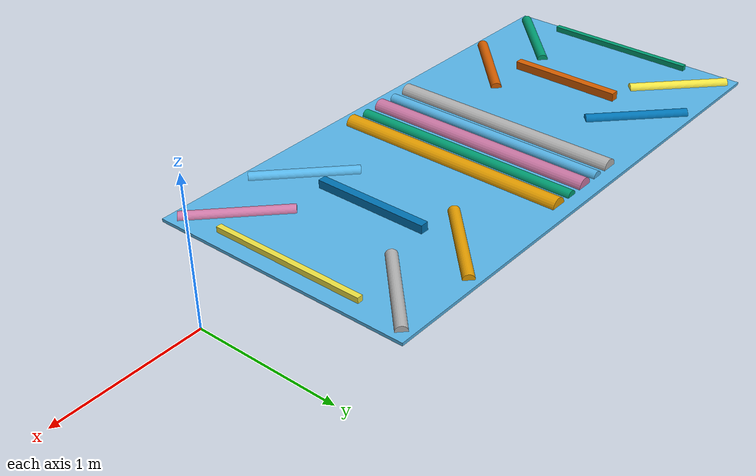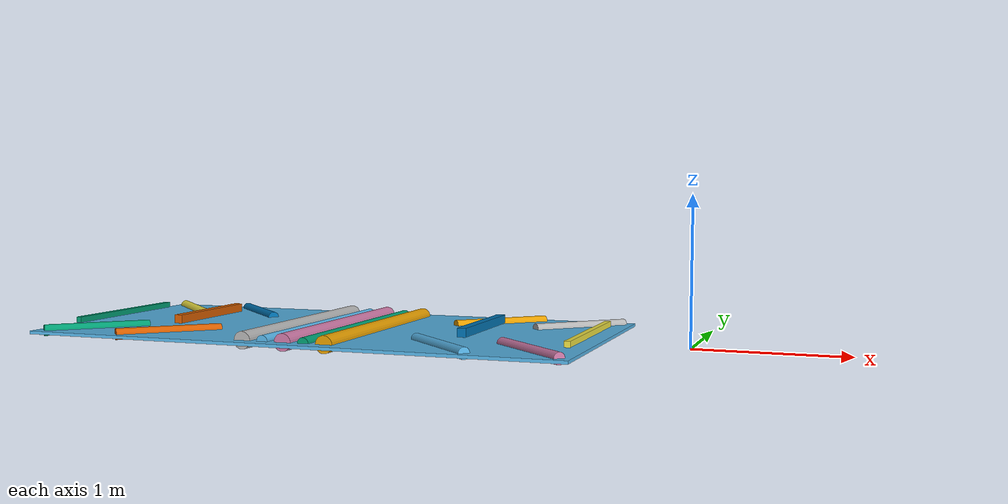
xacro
<?xml version="1.0"?>
<robot name="rough_terrrain" xmlns:xacro="http://www.ros.org/wiki/xacro">
    <gazebo>
        <static>true</static>
    </gazebo>

    <!-- Sizes from the rules of the cybathlon 2020 -->
    <xacro:property name="plate_height" default="0.022"/>
    <xacro:property name="plate_length" default="3.88"/>
    <xacro:property name="plate_width" default="1.95"/>

    <xacro:property name="long_block_width" default="0.04"/>
    <xacro:property name="long_block_length" default="1.15"/>
    <xacro:property name="short_block_width" default="0.06"/>
    <xacro:property name="short_block_length" default="0.85"/>

    <xacro:property name="side_rods_radius" default="0.04"/>
    <xacro:property name="side_rods_length" default="0.736"/>
    <xacro:property name="thick_rod_radius" default="0.06"/>
    <xacro:property name="thin_rod_radius" default="0.04"/>
    <xacro:property name="middle_rods_length" default="1.75"/>

    <xacro:property name="distance_to_origin" default="0.4"/>

    <xacro:property name="parent_name" value="world"/>
    <xacro:property name="mu1" value="1.0"/>
    <xacro:property name="mu2" value="1.0"/>
    <!-- Minimum allowable depth before contact correction impulse is applied. -->
    <xacro:property name="min_depth" value="0.0005"/>

    <!-- Used for fixing robot to Gazebo 'base_link' -->
    <link name="${parent_name}"/>

    <!-- Links -->

<!--                    ixx="1"-->
<!--                    ixy="1"-->
<!--                    ixz="1"-->
<!--                    iyy="1"-->
<!--                    iyz="1"-->

    <link name="bottom_plate">
        <collision>
            <geometry>
                <box size="${plate_length} ${plate_width} ${plate_height}" />
            </geometry>
        </collision>

        <visual name='visual'>
          <geometry>
            <box size="${plate_length} ${plate_width} ${plate_height}" />
          </geometry>
        </visual>
        <inertial>
            <origin xyz="0 0 0" rpy="0 0 0"/>
            <mass value="1"/>
            <inertia
                    ixx="1"
                    ixy="1"
                    ixz="1"
                    iyy="1"
                    iyz="1"
                    izz="1" />
        </inertial>
    </link>

    <link name="long_block_1">
        <collision>
          <origin xyz="0 0 0" rpy="0 0 0"/>
          <geometry>
            <box size="${long_block_length} ${long_block_width} ${long_block_width}" />
          </geometry>
        </collision>

        <visual name='visual'>
          <origin xyz="0 0 0" rpy="0 0 0"/>
          <geometry>
            <box size="${long_block_length} ${long_block_width} ${long_block_width}" />
          </geometry>
        </visual>
    </link>

    <link name="long_block_2">
        <collision>
            <origin xyz="0 0 0" rpy="0 0 0"/>
            <geometry>
                <box size="${long_block_length} ${long_block_width} ${long_block_width}" />
            </geometry>
        </collision>

        <visual name='visual'>
            <origin xyz="0 0 0" rpy="0 0 0"/>
            <geometry>
                <box size="${long_block_length} ${long_block_width} ${long_block_width}" />
            </geometry>
        </visual>
    </link>

    <link name="short_block_1">
        <collision>
          <origin xyz="0 0 0" rpy="0 0 0"/>
          <geometry>
            <box size="${short_block_length} ${short_block_width} ${short_block_width}" />
          </geometry>
        </collision>

        <visual name='visual'>
          <origin xyz="0 0 0" rpy="0 0 0"/>
          <geometry>
            <box size="${short_block_length} ${short_block_width} ${short_block_width}" />
          </geometry>
        </visual>
    </link>

    <link name="short_block_2">
        <collision>
            <origin xyz="0 0 0" rpy="0 0 0"/>
            <geometry>
                <box size="${short_block_length} ${short_block_width} ${short_block_width}" />
            </geometry>
        </collision>

        <visual name='visual'>
            <origin xyz="0 0 0" rpy="0 0 0"/>
            <geometry>
                <box size="${short_block_length} ${short_block_width} ${short_block_width}" />
            </geometry>
        </visual>
    </link>

    <link name="side_rod_1">
        <collision>
          <origin xyz="0 0 0" rpy="0 0 0"/>
          <geometry>
            <cylinder length="${side_rods_length}" radius="${side_rods_radius}" />
          </geometry>
        </collision>

        <visual name='visual'>
          <origin xyz="0 0 0" rpy="0 0 0"/>
          <geometry>
            <cylinder length="${side_rods_length}" radius="${side_rods_radius}" />
          </geometry>
        </visual>
    </link>

    <link name="side_rod_2">
        <collision>
            <origin xyz="0 0 0" rpy="0 0 0"/>
            <geometry>
                <cylinder length="${side_rods_length}" radius="${side_rods_radius}" />
            </geometry>
        </collision>

        <visual name='visual'>
            <origin xyz="0 0 0" rpy="0 0 0"/>
            <geometry>
                <cylinder length="${side_rods_length}" radius="${side_rods_radius}" />
            </geometry>
        </visual>
    </link>

    <link name="side_rod_3">
        <collision>
            <origin xyz="0 0 0" rpy="0 0 0"/>
            <geometry>
                <cylinder length="${side_rods_length}" radius="${side_rods_radius}" />
            </geometry>
        </collision>

        <visual name='visual'>
            <origin xyz="0 0 0" rpy="0 0 0"/>
            <geometry>
                <cylinder length="${side_rods_length}" radius="${side_rods_radius}" />
            </geometry>
        </visual>
    </link>

    <link name="side_rod_4">
        <collision>
            <origin xyz="0 0 0" rpy="0 0 0"/>
            <geometry>
                <cylinder length="${side_rods_length}" radius="${side_rods_radius}" />
            </geometry>
        </collision>

        <visual name='visual'>
            <origin xyz="0 0 0" rpy="0 0 0"/>
            <geometry>
                <cylinder length="${side_rods_length}" radius="${side_rods_radius}" />
            </geometry>
        </visual>
    </link>

    <link name="side_rod_5">
        <collision>
            <origin xyz="0 0 0" rpy="0 0 0"/>
            <geometry>
                <cylinder length="${side_rods_length}" radius="${side_rods_radius}" />
            </geometry>
        </collision>

        <visual name='visual'>
            <origin xyz="0 0 0" rpy="0 0 0"/>
            <geometry>
                <cylinder length="${side_rods_length}" radius="${side_rods_radius}" />
            </geometry>
        </visual>
    </link>

    <link name="side_rod_6">
        <collision>
            <origin xyz="0 0 0" rpy="0 0 0"/>
            <geometry>
                <cylinder length="${side_rods_length}" radius="${side_rods_radius}" />
            </geometry>
        </collision>

        <visual name='visual'>
            <origin xyz="0 0 0" rpy="0 0 0"/>
            <geometry>
                <cylinder length="${side_rods_length}" radius="${side_rods_radius}" />
            </geometry>
        </visual>
    </link>

    <link name="side_rod_7">
        <collision>
            <origin xyz="0 0 0" rpy="0 0 0"/>
            <geometry>
                <cylinder length="${side_rods_length}" radius="${side_rods_radius}" />
            </geometry>
        </collision>

        <visual name='visual'>
            <origin xyz="0 0 0" rpy="0 0 0"/>
            <geometry>
                <cylinder length="${side_rods_length}" radius="${side_rods_radius}" />
            </geometry>
        </visual>
    </link>

    <link name="side_rod_8">
        <collision>
            <origin xyz="0 0 0" rpy="0 0 0"/>
            <geometry>
                <cylinder length="${side_rods_length}" radius="${side_rods_radius}" />
            </geometry>
        </collision>

        <visual name='visual'>
            <origin xyz="0 0 0" rpy="0 0 0"/>
            <geometry>
                <cylinder length="${side_rods_length}" radius="${side_rods_radius}" />
            </geometry>
        </visual>
    </link>

    <link name="thick_rod_1">
        <collision>
          <origin xyz="0 0 0" rpy="0 0 0"/>
          <geometry>
            <cylinder length="${middle_rods_length}" radius="${thick_rod_radius}" />
          </geometry>
        </collision>

        <visual name='visual'>
          <origin xyz="0 0 0" rpy="0 0 0"/>
          <geometry>
              <cylinder length="${middle_rods_length}" radius="${thick_rod_radius}" />
          </geometry>
        </visual>
    </link>

    <link name="thick_rod_2">
        <collision>
            <origin xyz="0 0 0" rpy="0 0 0"/>
            <geometry>
                <cylinder length="${middle_rods_length}" radius="${thick_rod_radius}" />
            </geometry>
        </collision>

        <visual name='visual'>
            <origin xyz="0 0 0" rpy="0 0 0"/>
            <geometry>
                <cylinder length="${middle_rods_length}" radius="${thick_rod_radius}" />
            </geometry>
        </visual>
    </link>

    <link name="thick_rod_3">
        <collision>
            <origin xyz="0 0 0" rpy="0 0 0"/>
            <geometry>
                <cylinder length="${middle_rods_length}" radius="${thick_rod_radius}" />
            </geometry>
        </collision>

        <visual name='visual'>
            <origin xyz="0 0 0" rpy="0 0 0"/>
            <geometry>
                <cylinder length="${middle_rods_length}" radius="${thick_rod_radius}" />
            </geometry>
        </visual>
    </link>

    <link name="thin_rod_1">
        <collision>
          <origin xyz="0 0 0" rpy="0 0 0"/>
          <geometry>
              <cylinder length="${middle_rods_length}" radius="${thin_rod_radius}" />
          </geometry>
        </collision>

        <visual name='visual'>
          <origin xyz="0 0 0" rpy="0 0 0"/>
          <geometry>
              <cylinder length="${middle_rods_length}" radius="${thin_rod_radius}" />
          </geometry>
        </visual>
    </link>

    <link name="thin_rod_2">
        <collision>
            <origin xyz="0 0 0" rpy="0 0 0"/>
            <geometry>
                <cylinder length="${middle_rods_length}" radius="${thin_rod_radius}" />
            </geometry>
        </collision>

        <visual name='visual'>
            <origin xyz="0 0 0" rpy="0 0 0"/>
            <geometry>
                <cylinder length="${middle_rods_length}" radius="${thin_rod_radius}" />
            </geometry>
        </visual>
    </link>

    <gazebo reference="bottom_plate">
        <mu1>${mu1}</mu1>
        <mu2>${mu2}</mu2>
        <minDepth>${min_depth}</minDepth>
    </gazebo>

    <gazebo reference="long_block_1">
        <mu1>${mu1}</mu1>
        <mu2>${mu2}</mu2>
        <minDepth>${min_depth}</minDepth>
    </gazebo>

    <gazebo reference="long_block_2">
        <mu1>${mu1}</mu1>
        <mu2>${mu2}</mu2>
        <minDepth>${min_depth}</minDepth>
    </gazebo>

    <gazebo reference="short_block_1">
        <mu1>${mu1}</mu1>
        <mu2>${mu2}</mu2>
        <minDepth>${min_depth}</minDepth>
    </gazebo>

    <gazebo reference="short_block_2">
        <mu1>${mu1}</mu1>
        <mu2>${mu2}</mu2>
        <minDepth>${min_depth}</minDepth>
    </gazebo>

    <gazebo reference="side_rod_1">
        <mu1>${mu1}</mu1>
        <mu2>${mu2}</mu2>
        <minDepth>${min_depth}</minDepth>
    </gazebo>

    <gazebo reference="side_rod_2">
        <mu1>${mu1}</mu1>
        <mu2>${mu2}</mu2>
        <minDepth>${min_depth}</minDepth>
    </gazebo>

    <gazebo reference="side_rod_3">
        <mu1>${mu1}</mu1>
        <mu2>${mu2}</mu2>
        <minDepth>${min_depth}</minDepth>
    </gazebo>

    <gazebo reference="side_rod_4">
        <mu1>${mu1}</mu1>
        <mu2>${mu2}</mu2>
        <minDepth>${min_depth}</minDepth>
    </gazebo>

    <gazebo reference="side_rod_5">
        <mu1>${mu1}</mu1>
        <mu2>${mu2}</mu2>
        <minDepth>${min_depth}</minDepth>
    </gazebo>

    <gazebo reference="side_rod_6">
        <mu1>${mu1}</mu1>
        <mu2>${mu2}</mu2>
        <minDepth>${min_depth}</minDepth>
    </gazebo>

    <gazebo reference="side_rod_7">
        <mu1>${mu1}</mu1>
        <mu2>${mu2}</mu2>
        <minDepth>${min_depth}</minDepth>
    </gazebo>

    <gazebo reference="side_rod_8">
        <mu1>${mu1}</mu1>
        <mu2>${mu2}</mu2>
        <minDepth>${min_depth}</minDepth>
    </gazebo>

    <gazebo reference="thick_rod_1">
        <mu1>${mu1}</mu1>
        <mu2>${mu2}</mu2>
        <minDepth>${min_depth}</minDepth>
    </gazebo>

    <gazebo reference="thick_rod_2">
        <mu1>${mu1}</mu1>
        <mu2>${mu2}</mu2>
        <minDepth>${min_depth}</minDepth>
    </gazebo>

    <gazebo reference="thick_rod_3">
        <mu1>${mu1}</mu1>
        <mu2>${mu2}</mu2>
        <minDepth>${min_depth}</minDepth>
    </gazebo>

    <gazebo reference="thin_rod_1">
        <mu1>${mu1}</mu1>
        <mu2>${mu2}</mu2>
        <minDepth>${min_depth}</minDepth>
    </gazebo>

    <gazebo reference="thin_rod_2">
        <mu1>${mu1}</mu1>
        <mu2>${mu2}</mu2>
        <minDepth>${min_depth}</minDepth>
    </gazebo>

    <!-- Joints -->

    <joint name="joint_0" type="fixed">
        <parent link="${parent_name}"/>
        <child link="bottom_plate"/>
        <origin xyz="-2.5  0 ${plate_height}" rpy="0 0 0"/>
    </joint>

    <joint name="joint_1" type="fixed">
        <parent link="bottom_plate"/>
        <child link="side_rod_1"/>
        <origin xyz="${plate_length / 2 - 0.33} -0.65 ${plate_height / 2}" rpy="${0.5 * pi} 0 ${0.25 * pi}"/>
    </joint>

    <joint name="joint_2" type="fixed">
        <parent link="bottom_plate"/>
        <child link="side_rod_2"/>
        <origin xyz="${plate_length / 2 - 0.33} 0.65 ${plate_height / 2}" rpy="${0.5 * pi} 0 ${0.75 * pi}"/>
    </joint>

    <joint name="joint_3" type="fixed">
        <parent link="bottom_plate"/>
        <child link="side_rod_3"/>
        <origin xyz="${plate_length / 2 - 0.93} 0.65 ${plate_height / 2}" rpy="${0.5 * pi} 0 ${0.75 * pi}"/>
    </joint>

    <joint name="joint_4" type="fixed">
        <parent link="bottom_plate"/>
        <child link="side_rod_4"/>
        <origin xyz="${plate_length / 2 - 0.93} -0.65 ${plate_height / 2}" rpy="${0.5 * pi} 0 ${0.25 * pi}"/>
    </joint>

    <joint name="joint_5" type="fixed">
        <parent link="bottom_plate"/>
        <child link="side_rod_5"/>
        <origin xyz="${-plate_length / 2 + 0.33} -0.65 ${plate_height / 2}" rpy="${0.5 * pi} 0 ${0.75 * pi}"/>
    </joint>

    <joint name="joint_6" type="fixed">
        <parent link="bottom_plate"/>
        <child link="side_rod_6"/>
        <origin xyz="${-plate_length / 2 + 0.33} 0.65 ${plate_height / 2}" rpy="${0.5 * pi} 0 ${0.25 * pi}"/>
    </joint>

    <joint name="joint_7" type="fixed">
        <parent link="bottom_plate"/>
        <child link="side_rod_7"/>
        <origin xyz="${-plate_length / 2 + 0.93} 0.65 ${plate_height / 2}" rpy="${0.5 * pi} 0 ${0.25 * pi}"/>
    </joint>

    <joint name="joint_8" type="fixed">
        <parent link="bottom_plate"/>
        <child link="side_rod_8"/>
        <origin xyz="${-plate_length / 2 + 0.93} -0.65 ${plate_height / 2}" rpy="${0.5 * pi} 0 ${0.75 * pi}"/>
    </joint>

    <joint name="joint_9" type="fixed">
        <parent link="bottom_plate"/>
        <child link="thick_rod_1"/>
        <origin xyz="0 0 ${plate_height / 2}" rpy="${0.5 * pi} 0 0"/>
    </joint>

    <joint name="joint_10" type="fixed">
        <parent link="bottom_plate"/>
        <child link="thick_rod_2"/>
        <origin xyz="${-plate_length / 2 + 1.64} 0 ${plate_height / 2}" rpy="${0.5 * pi} 0 0"/>
    </joint>

    <joint name="joint_11" type="fixed">
        <parent link="bottom_plate"/>
        <child link="thick_rod_3"/>
        <origin xyz="${plate_length / 2 - 1.64} 0 ${plate_height / 2}" rpy="${0.5 * pi} 0 0"/>
    </joint>

    <joint name="joint_12" type="fixed">
        <parent link="bottom_plate"/>
        <child link="thin_rod_1"/>
        <origin xyz="${-plate_length / 2 + 1.79} 0 ${plate_height / 2}" rpy="${0.5 * pi} 0 0"/>
    </joint>

    <joint name="joint_13" type="fixed">
        <parent link="bottom_plate"/>
        <child link="thin_rod_2"/>
        <origin xyz="${plate_length / 2 - 1.79} 0 ${plate_height / 2}" rpy="${0.5 * pi} 0 0"/>
    </joint>

    <joint name="joint_14" type="fixed">
        <parent link="bottom_plate"/>
        <child link="long_block_1"/>
        <origin xyz="${-plate_length / 2 + 0.11} 0 ${plate_height / 2 + long_block_width}" rpy="0 0 ${0.5 * pi}"/>
    </joint>

    <joint name="joint_15" type="fixed">
        <parent link="bottom_plate"/>
        <child link="long_block_2"/>
        <origin xyz="${plate_length / 2 - 0.11} 0 ${plate_height / 2 + long_block_width}" rpy="0 0 ${0.5 * pi}"/>
    </joint>

    <joint name="joint_16" type="fixed">
        <parent link="bottom_plate"/>
        <child link="short_block_1"/>
        <origin xyz="${plate_length / 2 - 0.86} 0 ${plate_height / 2 + short_block_width}" rpy="0 0 ${0.5 * pi}"/>
    </joint>

    <joint name="joint_17" type="fixed">
        <parent link="bottom_plate"/>
        <child link="short_block_2"/>
        <origin xyz="${-plate_length / 2 + 0.86} 0 ${plate_height / 2 + short_block_width}" rpy="0 0 ${0.5 * pi}"/>
    </joint>

</robot>
